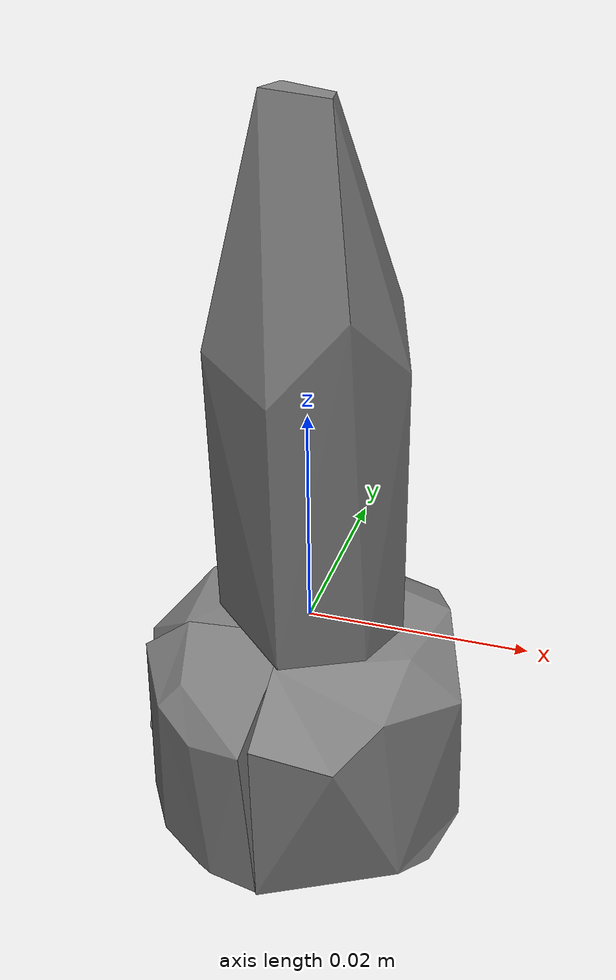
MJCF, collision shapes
<mujoco model="d_toy_airplane">
  <compiler angle="radian" />

  <asset>
    <mesh name="d_toy_airplane_visual_mesh" file="d_toy_airplane/textured.obj" />
    <mesh name="d_toy_airplane_collision_mesh_0" file="d_toy_airplane/textured_coacd_0.stl" />
    <mesh name="d_toy_airplane_collision_mesh_1" file="d_toy_airplane/textured_coacd_1.stl" />
    <mesh name="d_toy_airplane_collision_mesh_2" file="d_toy_airplane/textured_coacd_2.stl" />
    <mesh name="d_toy_airplane_collision_mesh_3" file="d_toy_airplane/textured_coacd_3.stl" />
    <texture name="d_toy_airplane_texture" type="2d" file="d_toy_airplane/texture_map.png" />
    <material name="d_toy_airplane_material" texture="d_toy_airplane_texture" />
  </asset>

  <worldbody>
    <body name="d_toy_airplane" pos="0 0 0" euler="0 0 0">
      <freejoint name="d_toy_airplane_joint" />
      <geom name="d_toy_airplane_visual_geom" type="mesh" mesh="d_toy_airplane_visual_mesh" material="d_toy_airplane_material" pos="0.02223323227368506 -0.0014562790387810324 -0.02130339450857217" euler="0 0 0" contype="0" conaffinity="0" group="0" />
      <geom name="d_toy_airplane_collision_geom_0" type="mesh" mesh="d_toy_airplane_collision_mesh_0" pos="0.02223323227368506 -0.0014562790387810324 -0.02130339450857217" euler="0 0 0" contype="1" conaffinity="1" group="3" />
      <geom name="d_toy_airplane_collision_geom_1" type="mesh" mesh="d_toy_airplane_collision_mesh_1" pos="0.02223323227368506 -0.0014562790387810324 -0.02130339450857217" euler="0 0 0" contype="1" conaffinity="1" group="3" />
      <geom name="d_toy_airplane_collision_geom_2" type="mesh" mesh="d_toy_airplane_collision_mesh_2" pos="0.02223323227368506 -0.0014562790387810324 -0.02130339450857217" euler="0 0 0" contype="1" conaffinity="1" group="3" />
      <geom name="d_toy_airplane_collision_geom_3" type="mesh" mesh="d_toy_airplane_collision_mesh_3" pos="0.02223323227368506 -0.0014562790387810324 -0.02130339450857217" euler="0 0 0" contype="1" conaffinity="1" group="3" />
      <inertial pos="0 0 0" euler="0 0 0" mass="0.114" diaginertia="0.001 0.001 0.001" />
    </body>
  </worldbody>
</mujoco>
